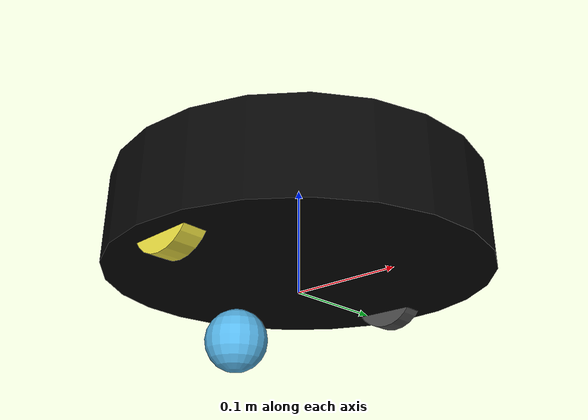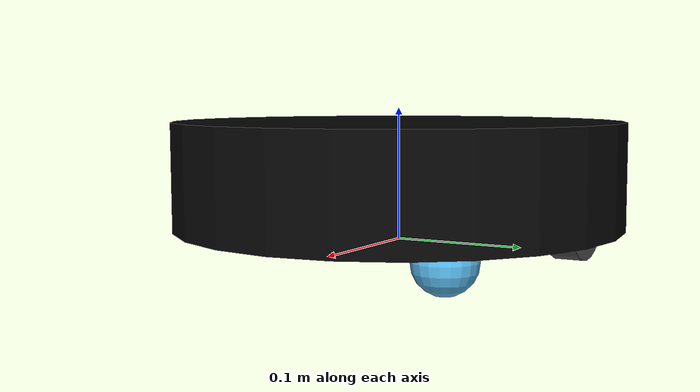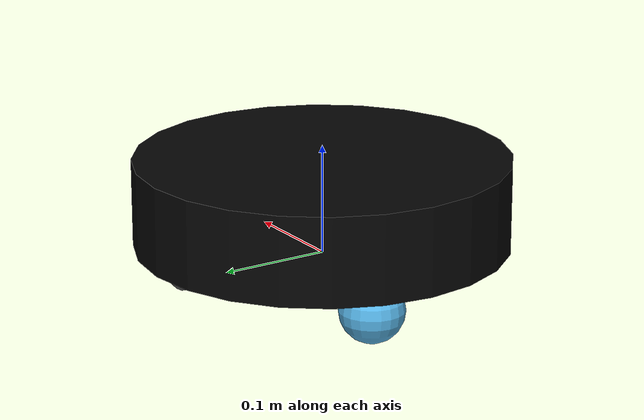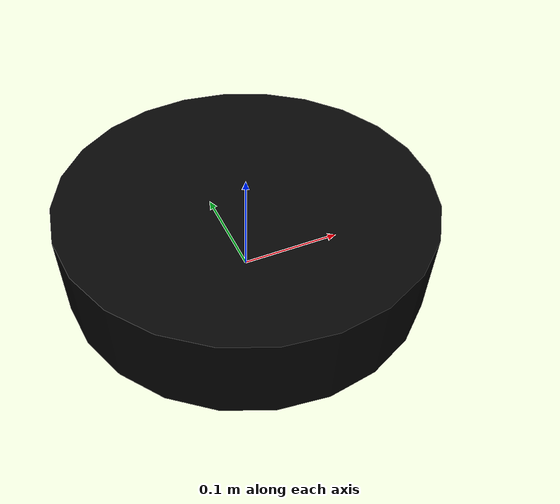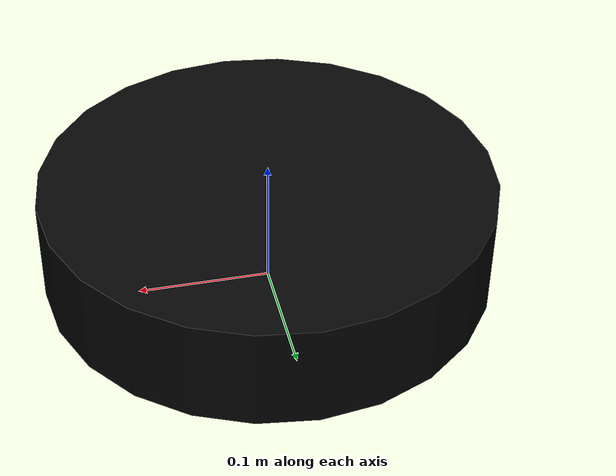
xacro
<?xml version="1.0"?>
<robot name="kobuki" xmlns:xacro="http://ros.org/wiki/xacro">
  <!-- Simplified, IP-clean Kobuki-like diff-drive base -->
  <link name="base_link">
    <inertial>
      <origin xyz="0 0 0.05" rpy="0 0 0"/>
      <mass value="3.0"/>
      <inertia ixx="0.03" ixy="0" ixz="0" iyy="0.03" iyz="0" izz="0.05"/>
    </inertial>
    <visual>
      <origin xyz="0 0 0.05" rpy="0 0 0"/>
      <geometry><cylinder radius="0.17" length="0.08"/></geometry>
      <material name="black"><color rgba="0.02 0.02 0.02 1"/></material>
    </visual>
    <collision>
      <origin xyz="0 0 0.05" rpy="0 0 0"/>
      <geometry><cylinder radius="0.18" length="0.09"/></geometry>
    </collision>
  </link>

  <link name="caster_link">
    <visual><geometry><sphere radius="0.03"/></geometry></visual>
    <collision><geometry><sphere radius="0.03"/></geometry></collision>
  </link>
  <joint name="caster_joint" type="fixed">
    <origin xyz="-0.08 0 -0.03" rpy="0 0 0"/>
    <parent link="base_link"/>
    <child link="caster_link"/>
  </joint>

  <link name="left_wheel_link">
    <visual>
      <origin xyz="0 0 0" rpy="1.5708 0 0"/>
      <geometry><cylinder radius="0.035" length="0.02"/></geometry>
      <material name="grey"><color rgba="0.3 0.3 0.3 1"/></material>
    </visual>
    <collision>
      <origin xyz="0 0 0" rpy="1.5708 0 0"/>
      <geometry><cylinder radius="0.036" length="0.02"/></geometry>
    </collision>
  </link>

  <joint name="left_wheel_joint" type="continuous">
    <origin xyz="0 0.14 0.03" rpy="0 0 0"/>
    <parent link="base_link"/>
    <child link="left_wheel_link"/>
    <axis xyz="0 1 0"/>
  </joint>

  <link name="right_wheel_link">
    <visual>
      <origin xyz="0 0 0" rpy="1.5708 0 0"/>
      <geometry><cylinder radius="0.035" length="0.02"/></geometry>
    </visual>
    <collision>
      <origin xyz="0 0 0" rpy="1.5708 0 0"/>
      <geometry><cylinder radius="0.036" length="0.02"/></geometry>
    </collision>
  </link>

  <joint name="right_wheel_joint" type="continuous">
    <origin xyz="0 -0.14 0.03" rpy="0 0 0"/>
    <parent link="base_link"/>
    <child link="right_wheel_link"/>
    <axis xyz="0 1 0"/>
  </joint>

  <!-- IMU and lidar mounts can be added here -->

</robot>
